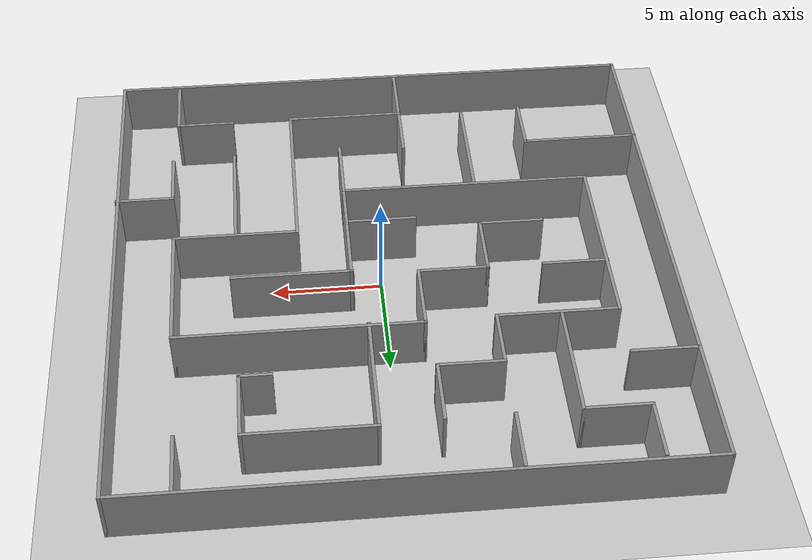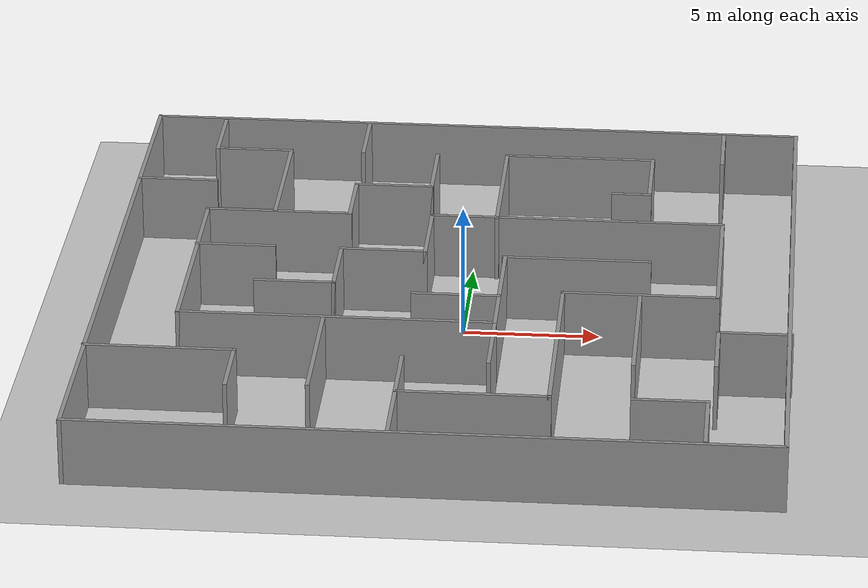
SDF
<sdf version="1.6">
 <world name="default">
  <light name="sun" type="directional">
   <pose>0 0 10 0 -0 0</pose>
   <diffuse>0.8 0.8 0.8 1</diffuse>
   <specular>0.2 0.2 0.2 1</specular>
   <attenuation>
    <range>1000</range>
    <constant>0.9</constant>
    <linear>0.01</linear>
    <quadratic>0.001</quadratic>
   </attenuation>
   <direction>-0.5 0.1 -0.9</direction>
  </light>
  <model name="ground_plane">
   <static>1</static>
   <link name="link">
    <collision name="collision">
     <geometry><plane><normal>0 0 1</normal><size>100 100</size></plane></geometry>
     <surface><friction><ode><mu>100</mu><mu2>50</mu2></ode></friction></surface>
    </collision>
    <visual name="visual">
     <cast_shadows>0</cast_shadows>
     <geometry><plane><normal>0 0 1</normal><size>100 100</size></plane></geometry>
     <material>
      <script><uri>file://media/materials/scripts/gazebo.material</uri><name>Gazebo/Grey</name></script>
     </material>
    </visual>
   </link>
  </model>
  <gravity>0 0 -9.8</gravity>
  <magnetic_field>6e-06 2.3e-05 -4.2e-05</magnetic_field>
  <atmosphere type="adiabatic"/>
  <physics name="default_physics" default="0" type="ode">
   <max_step_size>0.01</max_step_size>
   <real_time_factor>1</real_time_factor>
   <real_time_update_rate>100</real_time_update_rate>
  </physics>
  <scene><ambient>0.4 0.4 0.4 1</ambient><background>0.7 0.7 0.7 1</background><shadows>1</shadows></scene>
  <spherical_coordinates>
   <surface_model>EARTH_WGS84</surface_model>
   <latitude_deg>0</latitude_deg>
   <longitude_deg>0</longitude_deg>
   <elevation>0</elevation>
   <heading_deg>0</heading_deg>
  </spherical_coordinates>
  <model name="mazetest">
   <pose>-0.464738 0.151607 0 0 -0 0</pose>
   <link name="Wall_10">
    <collision name="Wall_10_Collision">
     <geometry><box><size>25.5 0.15 2.5</size></box></geometry>
     <pose>0 0 1.25 0 -0 0</pose>
    </collision>
    <visual name="Wall_10_Visual">
     <pose>0 0 1.25 0 -0 0</pose>
     <geometry><box><size>25.5 0.15 2.5</size></box></geometry>
     <material>
      <script><uri>file://media/materials/scripts/gazebo.material</uri><name>Gazebo/Grey</name></script>
      <ambient>1 1 1 1</ambient>
     </material>
     <meta><layer>0</layer></meta>
    </visual>
    <pose>12.4061 0 0 0 -0 -1.5708</pose>
   </link>
   <link name="Wall_11">
    <collision name="Wall_11_Collision">
     <geometry><box><size>25 0.15 2.5</size></box></geometry>
     <pose>0 0 1.25 0 -0 0</pose>
    </collision>
    <visual name="Wall_11_Visual">
     <pose>0 0 1.25 0 -0 0</pose>
     <geometry><box><size>25 0.15 2.5</size></box></geometry>
     <material>
      <script><uri>file://media/materials/scripts/gazebo.material</uri><name>Gazebo/Grey</name></script>
      <ambient>1 1 1 1</ambient>
     </material>
     <meta><layer>0</layer></meta>
    </visual>
    <pose>-0.018928 -12.675 0 0 -0 3.14159</pose>
   </link>
   <link name="Wall_12">
    <collision name="Wall_12_Collision">
     <geometry><box><size>25.5 0.15 2.5</size></box></geometry>
     <pose>0 0 1.25 0 -0 0</pose>
    </collision>
    <visual name="Wall_12_Visual">
     <pose>0 0 1.25 0 -0 0</pose>
     <geometry><box><size>25.5 0.15 2.5</size></box></geometry>
     <material>
      <script><uri>file://media/materials/scripts/gazebo.material</uri><name>Gazebo/Grey</name></script>
      <ambient>1 1 1 1</ambient>
     </material>
     <meta><layer>0</layer></meta>
    </visual>
    <pose>-12.4439 0 0 0 -0 1.5708</pose>
   </link>
   <link name="Wall_14">
    <collision name="Wall_14_Collision">
     <geometry><box><size>2.75 0.15 2.5</size></box></geometry>
     <pose>0 0 1.25 0 -0 0</pose>
    </collision>
    <visual name="Wall_14_Visual">
     <pose>0 0 1.25 0 -0 0</pose>
     <geometry><box><size>2.75 0.15 2.5</size></box></geometry>
     <material>
      <script><uri>file://media/materials/scripts/gazebo.material</uri><name>Gazebo/Grey</name></script>
      <ambient>1 1 1 1</ambient>
     </material>
     <meta><layer>0</layer></meta>
    </visual>
    <pose>-9.82592 11.1627 0 0 -0 -1.5708</pose>
   </link>
   <link name="Wall_15">
    <collision name="Wall_15_Collision">
     <geometry><box><size>3 0.15 2.5</size></box></geometry>
     <pose>0 0 1.25 0 -0 0</pose>
    </collision>
    <visual name="Wall_15_Visual">
     <pose>0 0 1.25 0 -0 0</pose>
     <geometry><box><size>3 0.15 2.5</size></box></geometry>
     <material>
      <script><uri>file://media/materials/scripts/gazebo.material</uri><name>Gazebo/Grey</name></script>
      <ambient>1 1 1 1</ambient>
     </material>
     <meta><layer>0</layer></meta>
    </visual>
    <pose>-8.40092 9.86273 0 0 -0 0</pose>
   </link>
   <link name="Wall_16">
    <collision name="Wall_16_Collision">
     <geometry><box><size>5.5 0.15 2.5</size></box></geometry>
     <pose>0 0 1.25 0 -0 0</pose>
    </collision>
    <visual name="Wall_16_Visual">
     <pose>0 0 1.25 0 -0 0</pose>
     <geometry><box><size>5.5 0.15 2.5</size></box></geometry>
     <material>
      <script><uri>file://media/materials/scripts/gazebo.material</uri><name>Gazebo/Grey</name></script>
      <ambient>1 1 1 1</ambient>
     </material>
     <meta><layer>0</layer></meta>
    </visual>
    <pose>-6.97592 7.18773 0 0 -0 -1.5708</pose>
   </link>
   <link name="Wall_18">
    <collision name="Wall_18_Collision">
     <geometry><box><size>3 0.15 2.5</size></box></geometry>
     <pose>0 0 1.25 0 -0 0</pose>
    </collision>
    <visual name="Wall_18_Visual">
     <pose>0 0 1.25 0 -0 0</pose>
     <geometry><box><size>3 0.15 2.5</size></box></geometry>
     <material>
      <script><uri>file://media/materials/scripts/gazebo.material</uri><name>Gazebo/Grey</name></script>
      <ambient>1 1 1 1</ambient>
     </material>
     <meta><layer>0</layer></meta>
    </visual>
    <pose>-10.9683 6.94368 0 0 -0 0</pose>
   </link>
   <link name="Wall_20">
    <collision name="Wall_20_Collision">
     <geometry><box><size>3 0.15 2.5</size></box></geometry>
     <pose>0 0 1.25 0 -0 0</pose>
    </collision>
    <visual name="Wall_20_Visual">
     <pose>0 0 1.25 0 -0 0</pose>
     <geometry><box><size>3 0.15 2.5</size></box></geometry>
     <material>
      <script><uri>file://media/materials/scripts/gazebo.material</uri><name>Gazebo/Grey</name></script>
      <ambient>1 1 1 1</ambient>
     </material>
     <meta><layer>0</layer></meta>
    </visual>
    <pose>-1.30978 8.45497 0 0 -0 -1.5708</pose>
   </link>
   <link name="Wall_21">
    <collision name="Wall_21_Collision">
     <geometry><box><size>3 0.15 2.5</size></box></geometry>
     <pose>0 0 1.25 0 -0 0</pose>
    </collision>
    <visual name="Wall_21_Visual">
     <pose>0 0 1.25 0 -0 0</pose>
     <geometry><box><size>3 0.15 2.5</size></box></geometry>
     <material>
      <script><uri>file://media/materials/scripts/gazebo.material</uri><name>Gazebo/Grey</name></script>
      <ambient>1 1 1 1</ambient>
     </material>
     <meta><layer>0</layer></meta>
    </visual>
    <pose>-2.73478 7.02998 0 0 -0 3.14159</pose>
   </link>
   <link name="Wall_22">
    <collision name="Wall_22_Collision">
     <geometry><box><size>2.75 0.15 2.5</size></box></geometry>
     <pose>0 0 1.25 0 -0 0</pose>
    </collision>
    <visual name="Wall_22_Visual">
     <pose>0 0 1.25 0 -0 0</pose>
     <geometry><box><size>2.75 0.15 2.5</size></box></geometry>
     <material>
      <script><uri>file://media/materials/scripts/gazebo.material</uri><name>Gazebo/Grey</name></script>
      <ambient>1 1 1 1</ambient>
     </material>
     <meta><layer>0</layer></meta>
    </visual>
    <pose>-4.15978 5.72997 0 0 -0 -1.5708</pose>
   </link>
   <link name="Wall_23">
    <collision name="Wall_23_Collision">
     <geometry><box><size>5.5 0.15 2.5</size></box></geometry>
     <pose>0 0 1.25 0 -0 0</pose>
    </collision>
    <visual name="Wall_23_Visual">
     <pose>0 0 1.25 0 -0 0</pose>
     <geometry><box><size>5.5 0.15 2.5</size></box></geometry>
     <material>
      <script><uri>file://media/materials/scripts/gazebo.material</uri><name>Gazebo/Grey</name></script>
      <ambient>1 1 1 1</ambient>
     </material>
     <meta><layer>0</layer></meta>
    </visual>
    <pose>-6.83478 4.42997 0 0 -0 3.14159</pose>
   </link>
   <link name="Wall_24">
    <collision name="Wall_24_Collision">
     <geometry><box><size>8.75 0.15 2.5</size></box></geometry>
     <pose>0 0 1.25 0 -0 0</pose>
    </collision>
    <visual name="Wall_24_Visual">
     <pose>0 0 1.25 0 -0 0</pose>
     <geometry><box><size>8.75 0.15 2.5</size></box></geometry>
     <material>
      <script><uri>file://media/materials/scripts/gazebo.material</uri><name>Gazebo/Grey</name></script>
      <ambient>1 1 1 1</ambient>
     </material>
     <meta><layer>0</layer></meta>
    </visual>
    <pose>-9.50978 0.129975 0 0 -0 -1.5708</pose>
   </link>
   <link name="Wall_25">
    <collision name="Wall_25_Collision">
     <geometry><box><size>11.5118 0.15 2.5</size></box></geometry>
     <pose>0 0 1.25 0 -0 0</pose>
    </collision>
    <visual name="Wall_25_Visual">
     <pose>0 0 1.25 0 -0 0</pose>
     <geometry><box><size>11.5118 0.15 2.5</size></box></geometry>
     <material>
      <script><uri>file://media/materials/scripts/gazebo.material</uri><name>Gazebo/Grey</name></script>
      <ambient>1 1 1 1</ambient>
     </material>
     <meta><layer>0</layer></meta>
    </visual>
    <pose>-3.8289 -4.17002 0 0 -0 0</pose>
   </link>
   <link name="Wall_26">
    <collision name="Wall_26_Collision">
     <geometry><box><size>5.5 0.15 2.5</size></box></geometry>
     <pose>0 0 1.25 0 -0 0</pose>
    </collision>
    <visual name="Wall_26_Visual">
     <pose>0 0 1.25 0 -0 0</pose>
     <geometry><box><size>5.5 0.15 2.5</size></box></geometry>
     <material>
      <script><uri>file://media/materials/scripts/gazebo.material</uri><name>Gazebo/Grey</name></script>
      <ambient>1 1 1 1</ambient>
     </material>
     <meta><layer>0</layer></meta>
    </visual>
    <pose>1.89851 -1.49503 0 0 -0 1.5708</pose>
   </link>
   <link name="Wall_27">
    <collision name="Wall_27_Collision">
     <geometry><box><size>5.48824 0.15 2.5</size></box></geometry>
     <pose>0 0 1.25 0 -0 0</pose>
    </collision>
    <visual name="Wall_27_Visual">
     <pose>0 0 1.25 0 -0 0</pose>
     <geometry><box><size>5.48824 0.15 2.5</size></box></geometry>
     <material>
      <script><uri>file://media/materials/scripts/gazebo.material</uri><name>Gazebo/Grey</name></script>
      <ambient>1 1 1 1</ambient>
     </material>
     <meta><layer>0</layer></meta>
    </visual>
    <pose>4.5211 1.17997 0 0 -0 0</pose>
   </link>
   <link name="Wall_29">
    <collision name="Wall_29_Collision">
     <geometry><box><size>2.75 0.15 2.5</size></box></geometry>
     <pose>0 0 1.25 0 -0 0</pose>
    </collision>
    <visual name="Wall_29_Visual">
     <pose>0 0 1.25 0 -0 0</pose>
     <geometry><box><size>2.75 0.15 2.5</size></box></geometry>
     <material>
      <script><uri>file://media/materials/scripts/gazebo.material</uri><name>Gazebo/Grey</name></script>
      <ambient>1 1 1 1</ambient>
     </material>
     <meta><layer>0</layer></meta>
    </visual>
    <pose>-4.18956 11.2072 0 0 -0 -1.5708</pose>
   </link>
   <link name="Wall_31">
    <collision name="Wall_31_Collision">
     <geometry><box><size>3 0.15 2.5</size></box></geometry>
     <pose>0 0 1.25 0 -0 0</pose>
    </collision>
    <visual name="Wall_31_Visual">
     <pose>0 0 1.25 0 -0 0</pose>
     <geometry><box><size>3 0.15 2.5</size></box></geometry>
     <material>
      <script><uri>file://media/materials/scripts/gazebo.material</uri><name>Gazebo/Grey</name></script>
      <ambient>1 1 1 1</ambient>
     </material>
     <meta><layer>0</layer></meta>
    </visual>
    <pose>-8.10692 1.4335 0 0 -0 0</pose>
   </link>
   <link name="Wall_33">
    <collision name="Wall_33_Collision">
     <geometry><box><size>3 0.15 2.5</size></box></geometry>
     <pose>0 0 1.25 0 -0 0</pose>
    </collision>
    <visual name="Wall_33_Visual">
     <pose>0 0 1.25 0 -0 0</pose>
     <geometry><box><size>3 0.15 2.5</size></box></geometry>
     <material>
      <script><uri>file://media/materials/scripts/gazebo.material</uri><name>Gazebo/Grey</name></script>
      <ambient>1 1 1 1</ambient>
     </material>
     <meta><layer>0</layer></meta>
    </visual>
    <pose>-5.59594 -1.41721 0 0 -0 0</pose>
   </link>
   <link name="Wall_34">
    <collision name="Wall_34_Collision">
     <geometry><box><size>3 0.15 2.5</size></box></geometry>
     <pose>0 0 1.25 0 -0 0</pose>
    </collision>
    <visual name="Wall_34_Visual">
     <pose>0 0 1.25 0 -0 0</pose>
     <geometry><box><size>3 0.15 2.5</size></box></geometry>
     <material>
      <script><uri>file://media/materials/scripts/gazebo.material</uri><name>Gazebo/Grey</name></script>
      <ambient>1 1 1 1</ambient>
     </material>
     <meta><layer>0</layer></meta>
    </visual>
    <pose>-4.17094 0.00779 0 0 -0 1.5708</pose>
   </link>
   <link name="Wall_35">
    <collision name="Wall_35_Collision">
     <geometry><box><size>3.25 0.15 2.5</size></box></geometry>
     <pose>0 0 1.25 0 -0 0</pose>
    </collision>
    <visual name="Wall_35_Visual">
     <pose>0 0 1.25 0 -0 0</pose>
     <geometry><box><size>3.25 0.15 2.5</size></box></geometry>
     <material>
      <script><uri>file://media/materials/scripts/gazebo.material</uri><name>Gazebo/Grey</name></script>
      <ambient>1 1 1 1</ambient>
     </material>
     <meta><layer>0</layer></meta>
    </visual>
    <pose>-2.62094 1.43279 0 0 -0 0</pose>
   </link>
   <link name="Wall_36">
    <collision name="Wall_36_Collision">
     <geometry><box><size>3.25 0.15 2.5</size></box></geometry>
     <pose>0 0 1.25 0 -0 0</pose>
    </collision>
    <visual name="Wall_36_Visual">
     <pose>0 0 1.25 0 -0 0</pose>
     <geometry><box><size>3.25 0.15 2.5</size></box></geometry>
     <material>
      <script><uri>file://media/materials/scripts/gazebo.material</uri><name>Gazebo/Grey</name></script>
      <ambient>1 1 1 1</ambient>
     </material>
     <meta><layer>0</layer></meta>
    </visual>
    <pose>-1.07094 2.98279 0 0 -0 1.5708</pose>
   </link>
   <link name="Wall_37">
    <collision name="Wall_37_Collision">
     <geometry><box><size>11 0.15 2.5</size></box></geometry>
     <pose>0 0 1.25 0 -0 0</pose>
    </collision>
    <visual name="Wall_37_Visual">
     <pose>0 0 1.25 0 -0 0</pose>
     <geometry><box><size>11 0.15 2.5</size></box></geometry>
     <material>
      <script><uri>file://media/materials/scripts/gazebo.material</uri><name>Gazebo/Grey</name></script>
      <ambient>1 1 1 1</ambient>
     </material>
     <meta><layer>0</layer></meta>
    </visual>
    <pose>4.35406 4.53279 0 0 -0 0</pose>
   </link>
   <link name="Wall_38">
    <collision name="Wall_38_Collision">
     <geometry><box><size>6.25 0.15 2.5</size></box></geometry>
     <pose>0 0 1.25 0 -0 0</pose>
    </collision>
    <visual name="Wall_38_Visual">
     <pose>0 0 1.25 0 -0 0</pose>
     <geometry><box><size>6.25 0.15 2.5</size></box></geometry>
     <material>
      <script><uri>file://media/materials/scripts/gazebo.material</uri><name>Gazebo/Grey</name></script>
      <ambient>1 1 1 1</ambient>
     </material>
     <meta><layer>0</layer></meta>
    </visual>
    <pose>9.77906 1.48279 0 0 -0 -1.5708</pose>
   </link>
   <link name="Wall_39">
    <collision name="Wall_39_Collision">
     <geometry><box><size>5.75 0.15 2.5</size></box></geometry>
     <pose>0 0 1.25 0 -0 0</pose>
    </collision>
    <visual name="Wall_39_Visual">
     <pose>0 0 1.25 0 -0 0</pose>
     <geometry><box><size>5.75 0.15 2.5</size></box></geometry>
     <material>
      <script><uri>file://media/materials/scripts/gazebo.material</uri><name>Gazebo/Grey</name></script>
      <ambient>1 1 1 1</ambient>
     </material>
     <meta><layer>0</layer></meta>
    </visual>
    <pose>6.97906 -1.56721 0 0 -0 3.14159</pose>
   </link>
   <link name="Wall_40">
    <collision name="Wall_40_Collision">
     <geometry><box><size>8.25 0.15 2.5</size></box></geometry>
     <pose>0 0 1.25 0 -0 0</pose>
    </collision>
    <visual name="Wall_40_Visual">
     <pose>0 0 1.25 0 -0 0</pose>
     <geometry><box><size>8.25 0.15 2.5</size></box></geometry>
     <material>
      <script><uri>file://media/materials/scripts/gazebo.material</uri><name>Gazebo/Grey</name></script>
      <ambient>1 1 1 1</ambient>
     </material>
     <meta><layer>0</layer></meta>
    </visual>
    <pose>4.17906 -5.61721 0 0 -0 -1.5708</pose>
   </link>
   <link name="Wall_41">
    <collision name="Wall_41_Collision">
     <geometry><box><size>5.5 0.15 2.5</size></box></geometry>
     <pose>0 0 1.25 0 -0 0</pose>
    </collision>
    <visual name="Wall_41_Visual">
     <pose>0 0 1.25 0 -0 0</pose>
     <geometry><box><size>5.5 0.15 2.5</size></box></geometry>
     <material>
      <script><uri>file://media/materials/scripts/gazebo.material</uri><name>Gazebo/Grey</name></script>
      <ambient>1 1 1 1</ambient>
     </material>
     <meta><layer>0</layer></meta>
    </visual>
    <pose>1.50406 -9.66721 0 0 -0 3.14159</pose>
   </link>
   <link name="Wall_42">
    <collision name="Wall_42_Collision">
     <geometry><box><size>2.75 0.15 2.5</size></box></geometry>
     <pose>0 0 1.25 0 -0 0</pose>
    </collision>
    <visual name="Wall_42_Visual">
     <pose>0 0 1.25 0 -0 0</pose>
     <geometry><box><size>2.75 0.15 2.5</size></box></geometry>
     <material>
      <script><uri>file://media/materials/scripts/gazebo.material</uri><name>Gazebo/Grey</name></script>
      <ambient>1 1 1 1</ambient>
     </material>
     <meta><layer>0</layer></meta>
    </visual>
    <pose>-1.17094 -8.36721 0 0 -0 1.5708</pose>
   </link>
   <link name="Wall_44">
    <collision name="Wall_44_Collision">
     <geometry><box><size>5.75 0.15 2.5</size></box></geometry>
     <pose>0 0 1.25 0 -0 0</pose>
    </collision>
    <visual name="Wall_44_Visual">
     <pose>0 0 1.25 0 -0 0</pose>
     <geometry><box><size>5.75 0.15 2.5</size></box></geometry>
     <material>
      <script><uri>file://media/materials/scripts/gazebo.material</uri><name>Gazebo/Grey</name></script>
      <ambient>1 1 1 1</ambient>
     </material>
     <meta><layer>0</layer></meta>
    </visual>
    <pose>1.35997 7.24411 0 0 -0 1.5708</pose>
   </link>
   <link name="Wall_45">
    <collision name="Wall_45_Collision">
     <geometry><box><size>5.75 0.15 2.5</size></box></geometry>
     <pose>0 0 1.25 0 -0 0</pose>
    </collision>
    <visual name="Wall_45_Visual">
     <pose>0 0 1.25 0 -0 0</pose>
     <geometry><box><size>5.75 0.15 2.5</size></box></geometry>
     <material>
      <script><uri>file://media/materials/scripts/gazebo.material</uri><name>Gazebo/Grey</name></script>
      <ambient>1 1 1 1</ambient>
     </material>
     <meta><layer>0</layer></meta>
    </visual>
    <pose>4.15997 10.0441 0 0 -0 0</pose>
   </link>
   <link name="Wall_46">
    <collision name="Wall_46_Collision">
     <geometry><box><size>3.25 0.15 2.5</size></box></geometry>
     <pose>0 0 1.25 0 -0 0</pose>
    </collision>
    <visual name="Wall_46_Visual">
     <pose>0 0 1.25 0 -0 0</pose>
     <geometry><box><size>3.25 0.15 2.5</size></box></geometry>
     <material>
      <script><uri>file://media/materials/scripts/gazebo.material</uri><name>Gazebo/Grey</name></script>
      <ambient>1 1 1 1</ambient>
     </material>
     <meta><layer>0</layer></meta>
    </visual>
    <pose>6.95997 8.49412 0 0 -0 -1.5708</pose>
   </link>
   <link name="Wall_47">
    <collision name="Wall_47_Collision">
     <geometry><box><size>1.5 0.15 2.5</size></box></geometry>
     <pose>0 0 1.25 0 -0 0</pose>
    </collision>
    <visual name="Wall_47_Visual">
     <pose>0 0 1.25 0 -0 0</pose>
     <geometry><box><size>1.5 0.15 2.5</size></box></geometry>
     <material>
      <script><uri>file://media/materials/scripts/gazebo.material</uri><name>Gazebo/Grey</name></script>
      <ambient>1 1 1 1</ambient>
     </material>
     <meta><layer>0</layer></meta>
    </visual>
    <pose>6.28497 6.94412 0 0 -0 3.14159</pose>
   </link>
   <link name="Wall_50">
    <collision name="Wall_50_Collision">
     <geometry><box><size>2.75 0.15 2.5</size></box></geometry>
     <pose>0 0 1.25 0 -0 0</pose>
    </collision>
    <visual name="Wall_50_Visual">
     <pose>0 0 1.25 0 -0 0</pose>
     <geometry><box><size>2.75 0.15 2.5</size></box></geometry>
     <material>
      <script><uri>file://media/materials/scripts/gazebo.material</uri><name>Gazebo/Grey</name></script>
      <ambient>1 1 1 1</ambient>
     </material>
     <meta><layer>0</layer></meta>
    </visual>
    <pose>9.62251 11.232 0 0 -0 -1.5708</pose>
   </link>
   <link name="Wall_52">
    <collision name="Wall_52_Collision">
     <geometry><box><size>5.5 0.15 2.5</size></box></geometry>
     <pose>0 0 1.25 0 -0 0</pose>
    </collision>
    <visual name="Wall_52_Visual">
     <pose>0 0 1.25 0 -0 0</pose>
     <geometry><box><size>5.5 0.15 2.5</size></box></geometry>
     <material>
      <script><uri>file://media/materials/scripts/gazebo.material</uri><name>Gazebo/Grey</name></script>
      <ambient>1 1 1 1</ambient>
     </material>
     <meta><layer>0</layer></meta>
    </visual>
    <pose>6.97213 -4.37133 0 0 -0 -1.5708</pose>
   </link>
   <link name="Wall_54">
    <collision name="Wall_54_Collision">
     <geometry><box><size>2.75 0.15 2.5</size></box></geometry>
     <pose>0 0 1.25 0 -0 0</pose>
    </collision>
    <visual name="Wall_54_Visual">
     <pose>0 0 1.25 0 -0 0</pose>
     <geometry><box><size>2.75 0.15 2.5</size></box></geometry>
     <material>
      <script><uri>file://media/materials/scripts/gazebo.material</uri><name>Gazebo/Grey</name></script>
      <ambient>1 1 1 1</ambient>
     </material>
     <meta><layer>0</layer></meta>
    </visual>
    <pose>11.1705 -4.31168 0 0 -0 3.14159</pose>
   </link>
   <link name="Wall_55">
    <collision name="Wall_55_Collision">
     <geometry><box><size>2.75 0.15 2.5</size></box></geometry>
     <pose>0 0 1.25 0 -0 0</pose>
    </collision>
    <visual name="Wall_55_Visual">
     <pose>0 0 1.25 0 -0 0</pose>
     <geometry><box><size>2.75 0.15 2.5</size></box></geometry>
     <material>
      <script><uri>file://media/materials/scripts/gazebo.material</uri><name>Gazebo/Grey</name></script>
      <ambient>1 1 1 1</ambient>
     </material>
     <meta><layer>0</layer></meta>
    </visual>
    <pose>9.87048 -5.61168 0 0 -0 -1.5708</pose>
   </link>
   <link name="Wall_57">
    <collision name="Wall_57_Collision">
     <geometry><box><size>2.75 0.15 2.5</size></box></geometry>
     <pose>0 0 1.25 0 -0 0</pose>
    </collision>
    <visual name="Wall_57_Visual">
     <pose>0 0 1.25 0 -0 0</pose>
     <geometry><box><size>2.75 0.15 2.5</size></box></geometry>
     <material>
      <script><uri>file://media/materials/scripts/gazebo.material</uri><name>Gazebo/Grey</name></script>
      <ambient>1 1 1 1</ambient>
     </material>
     <meta><layer>0</layer></meta>
    </visual>
    <pose>8.35846 -9.62494 0 0 -0 0</pose>
   </link>
   <link name="Wall_58">
    <collision name="Wall_58_Collision">
     <geometry><box><size>3 0.15 2.5</size></box></geometry>
     <pose>0 0 1.25 0 -0 0</pose>
    </collision>
    <visual name="Wall_58_Visual">
     <pose>0 0 1.25 0 -0 0</pose>
     <geometry><box><size>3 0.15 2.5</size></box></geometry>
     <material>
      <script><uri>file://media/materials/scripts/gazebo.material</uri><name>Gazebo/Grey</name></script>
      <ambient>1 1 1 1</ambient>
     </material>
     <meta><layer>0</layer></meta>
    </visual>
    <pose>9.65846 -11.0499 0 0 -0 -1.5708</pose>
   </link>
   <link name="Wall_60">
    <collision name="Wall_60_Collision">
     <geometry><box><size>3 0.15 2.5</size></box></geometry>
     <pose>0 0 1.25 0 -0 0</pose>
    </collision>
    <visual name="Wall_60_Visual">
     <pose>0 0 1.25 0 -0 0</pose>
     <geometry><box><size>3 0.15 2.5</size></box></geometry>
     <material>
      <script><uri>file://media/materials/scripts/gazebo.material</uri><name>Gazebo/Grey</name></script>
      <ambient>1 1 1 1</ambient>
     </material>
     <meta><layer>0</layer></meta>
    </visual>
    <pose>-1.17094 -11.0922 0 0 -0 -1.5708</pose>
   </link>
   <link name="Wall_62">
    <collision name="Wall_62_Collision">
     <geometry><box><size>5.5 0.15 2.5</size></box></geometry>
     <pose>0 0 1.25 0 -0 0</pose>
    </collision>
    <visual name="Wall_62_Visual">
     <pose>0 0 1.25 0 -0 0</pose>
     <geometry><box><size>5.5 0.15 2.5</size></box></geometry>
     <material>
      <script><uri>file://media/materials/scripts/gazebo.material</uri><name>Gazebo/Grey</name></script>
      <ambient>1 1 1 1</ambient>
     </material>
     <meta><layer>0</layer></meta>
    </visual>
    <pose>-9.79548 -7.02107 0 0 -0 0</pose>
   </link>
   <link name="Wall_63">
    <collision name="Wall_63_Collision">
     <geometry><box><size>2.75 0.15 2.5</size></box></geometry>
     <pose>0 0 1.25 0 -0 0</pose>
    </collision>
    <visual name="Wall_63_Visual">
     <pose>0 0 1.25 0 -0 0</pose>
     <geometry><box><size>2.75 0.15 2.5</size></box></geometry>
     <material>
      <script><uri>file://media/materials/scripts/gazebo.material</uri><name>Gazebo/Grey</name></script>
      <ambient>1 1 1 1</ambient>
     </material>
     <meta><layer>0</layer></meta>
    </visual>
    <pose>-7.12048 -8.32108 0 0 -0 -1.5708</pose>
   </link>
   <link name="Wall_66">
    <collision name="Wall_66_Collision">
     <geometry><box><size>5.25 0.15 2.5</size></box></geometry>
     <pose>0 0 1.25 0 -0 0</pose>
    </collision>
    <visual name="Wall_66_Visual">
     <pose>0 0 1.25 0 -0 0</pose>
     <geometry><box><size>5.25 0.15 2.5</size></box></geometry>
     <material>
      <script><uri>file://media/materials/scripts/gazebo.material</uri><name>Gazebo/Grey</name></script>
      <ambient>1 1 1 1</ambient>
     </material>
     <meta><layer>0</layer></meta>
    </visual>
    <pose>-4.25205 -6.88584 0 0 -0 -1.5708</pose>
   </link>
   <link name="Wall_68">
    <collision name="Wall_68_Collision">
     <geometry><box><size>3.25 0.15 2.5</size></box></geometry>
     <pose>0 0 1.25 0 -0 0</pose>
    </collision>
    <visual name="Wall_68_Visual">
     <pose>0 0 1.25 0 -0 0</pose>
     <geometry><box><size>3.25 0.15 2.5</size></box></geometry>
     <material>
      <script><uri>file://media/materials/scripts/gazebo.material</uri><name>Gazebo/Grey</name></script>
      <ambient>1 1 1 1</ambient>
     </material>
     <meta><layer>0</layer></meta>
    </visual>
    <pose>1.89851 -5.72002 0 0 -0 -1.5708</pose>
   </link>
   <link name="Wall_70">
    <collision name="Wall_70_Collision">
     <geometry><box><size>3.25 0.15 2.5</size></box></geometry>
     <pose>0 0 1.25 0 -0 0</pose>
    </collision>
    <visual name="Wall_70_Visual">
     <pose>0 0 1.25 0 -0 0</pose>
     <geometry><box><size>3.25 0.15 2.5</size></box></geometry>
     <material>
      <script><uri>file://media/materials/scripts/gazebo.material</uri><name>Gazebo/Grey</name></script>
      <ambient>1 1 1 1</ambient>
     </material>
     <meta><layer>0</layer></meta>
    </visual>
    <pose>0.321817 -2.0404 0 0 -0 3.14159</pose>
   </link>
   <link name="Wall_9">
    <collision name="Wall_9_Collision">
     <geometry><box><size>25 0.15 2.5</size></box></geometry>
     <pose>0 0 1.25 0 -0 0</pose>
    </collision>
    <visual name="Wall_9_Visual">
     <pose>0 0 1.25 0 -0 0</pose>
     <geometry><box><size>25 0.15 2.5</size></box></geometry>
     <material>
      <script><uri>file://media/materials/scripts/gazebo.material</uri><name>Gazebo/Grey</name></script>
      <ambient>1 1 1 1</ambient>
     </material>
     <meta><layer>0</layer></meta>
    </visual>
    <pose>-0.018928 12.675 0 0 -0 0</pose>
   </link>
   <static>1</static>
  </model>
 </world>
</sdf>
